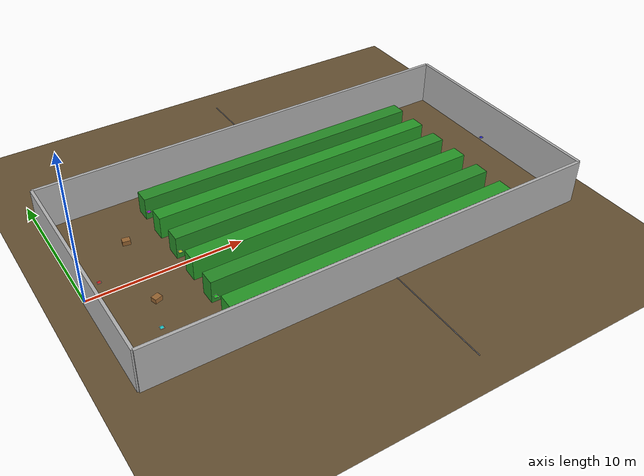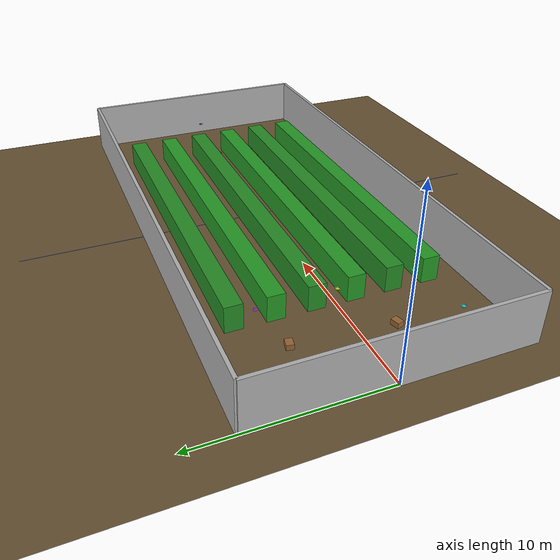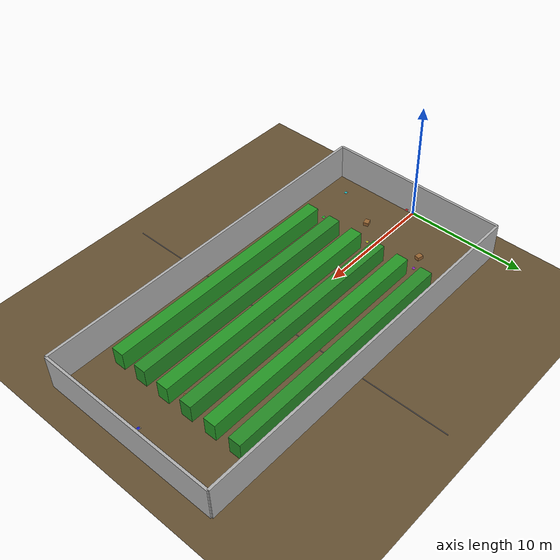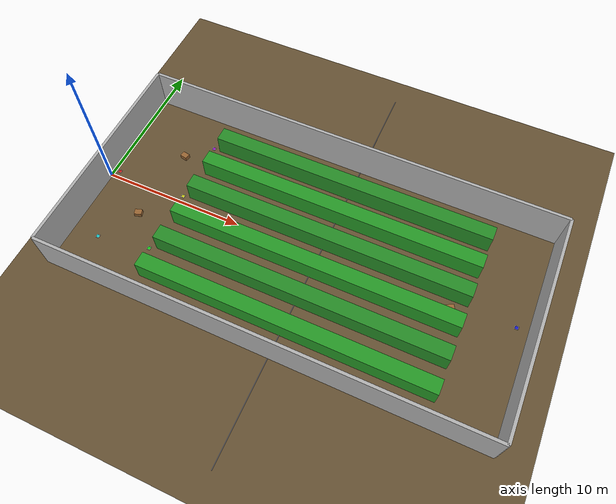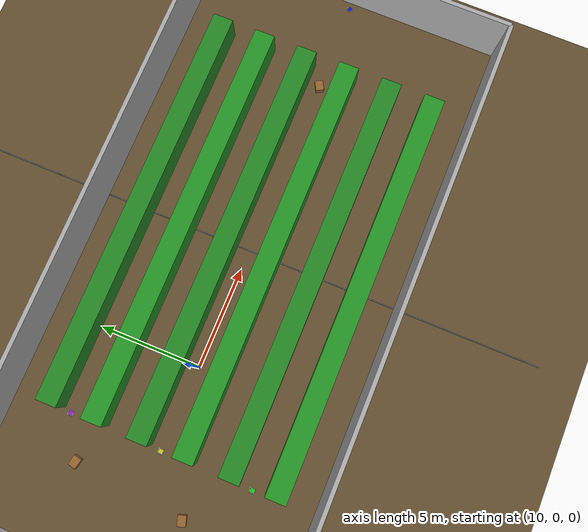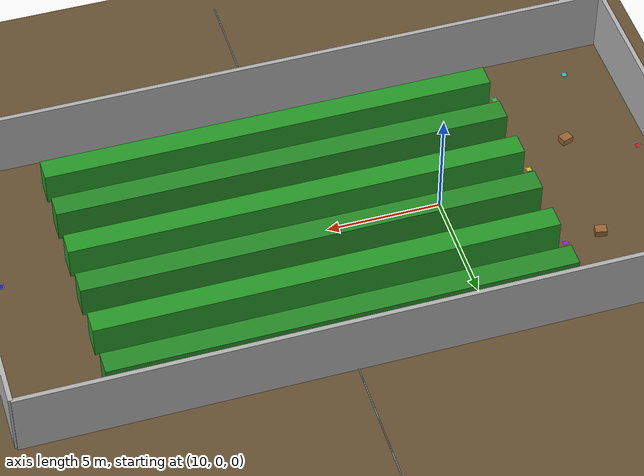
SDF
<?xml version="1.0"?>
<sdf version="1.6">
  <world name="greenhouse_simple">

    <!-- ═══════════════ Physics ═══════════════ -->
    <physics type="ode">
      <max_step_size>0.001</max_step_size>
      <real_time_factor>1.0</real_time_factor>
      <real_time_update_rate>1000</real_time_update_rate>
    </physics>

    <!-- ═══════════════ Lighting ═══════════════ -->
    <include>
      <uri>model://sun</uri>
    </include>

    <!-- ═══════════════ Ground Plane ═══════════════ -->
    <model name="ground_plane">
      <static>true</static>
      <link name="ground_link">
        <collision name="ground_collision">
          <geometry>
            <plane>
              <normal>0 0 1</normal>
              <size>40 20</size>
            </plane>
          </geometry>
        </collision>
        <visual name="ground_visual">
          <geometry>
            <plane>
              <normal>0 0 1</normal>
              <size>40 20</size>
            </plane>
          </geometry>
          <material>
            <ambient>0.35 0.28 0.18 1</ambient>
            <diffuse>0.4 0.32 0.2 1</diffuse>
          </material>
        </visual>
      </link>
    </model>

    <!-- ═══════════════ Greenhouse Walls (~30m x 15m) ═══════════════ -->
    <!-- North wall -->
    <model name="wall_north">
      <static>true</static>
      <pose>15 7.5 1.5 0 0 0</pose>
      <link name="wall_link">
        <collision name="col"><geometry><box><size>30 0.2 3.0</size></box></geometry></collision>
        <visual name="vis"><geometry><box><size>30 0.2 3.0</size></box></geometry>
          <material><ambient>0.6 0.6 0.6 1</ambient><diffuse>0.7 0.7 0.7 1</diffuse></material>
        </visual>
      </link>
    </model>

    <!-- South wall -->
    <model name="wall_south">
      <static>true</static>
      <pose>15 -7.5 1.5 0 0 0</pose>
      <link name="wall_link">
        <collision name="col"><geometry><box><size>30 0.2 3.0</size></box></geometry></collision>
        <visual name="vis"><geometry><box><size>30 0.2 3.0</size></box></geometry>
          <material><ambient>0.6 0.6 0.6 1</ambient><diffuse>0.7 0.7 0.7 1</diffuse></material>
        </visual>
      </link>
    </model>

    <!-- West wall (entrance side) -->
    <model name="wall_west">
      <static>true</static>
      <pose>0 0 1.5 0 0 0</pose>
      <link name="wall_link">
        <collision name="col"><geometry><box><size>0.2 15 3.0</size></box></geometry></collision>
        <visual name="vis"><geometry><box><size>0.2 15 3.0</size></box></geometry>
          <material><ambient>0.6 0.6 0.6 1</ambient><diffuse>0.7 0.7 0.7 1</diffuse></material>
        </visual>
      </link>
    </model>

    <!-- East wall -->
    <model name="wall_east">
      <static>true</static>
      <pose>30 0 1.5 0 0 0</pose>
      <link name="wall_link">
        <collision name="col"><geometry><box><size>0.2 15 3.0</size></box></geometry></collision>
        <visual name="vis"><geometry><box><size>0.2 15 3.0</size></box></geometry>
          <material><ambient>0.6 0.6 0.6 1</ambient><diffuse>0.7 0.7 0.7 1</diffuse></material>
        </visual>
      </link>
    </model>

    <!-- ═══════════════ Crop Rows (6 parallel rows) ═══════════════ -->
    <!-- Rows run East-West (X-axis), spaced along Y with 1.2m aisles -->
    <!-- Row width=1.0m, aisle=1.2m, so center-to-center = 2.2m -->
    <!-- Starting from Y = -5.5 going north -->

    <!-- Row 1 -->
    <model name="crop_row_1">
      <static>true</static>
      <pose>16 -5.5 0.75 0 0 0</pose>
      <link name="row_link">
        <collision name="col"><geometry><box><size>20 1.0 1.5</size></box></geometry></collision>
        <visual name="vis"><geometry><box><size>20 1.0 1.5</size></box></geometry>
          <material><ambient>0.1 0.5 0.1 1</ambient><diffuse>0.15 0.6 0.15 1</diffuse></material>
        </visual>
      </link>
    </model>

    <!-- Row 2 -->
    <model name="crop_row_2">
      <static>true</static>
      <pose>16 -3.3 0.75 0 0 0</pose>
      <link name="row_link">
        <collision name="col"><geometry><box><size>20 1.0 1.5</size></box></geometry></collision>
        <visual name="vis"><geometry><box><size>20 1.0 1.5</size></box></geometry>
          <material><ambient>0.1 0.45 0.1 1</ambient><diffuse>0.15 0.55 0.15 1</diffuse></material>
        </visual>
      </link>
    </model>

    <!-- Row 3 -->
    <model name="crop_row_3">
      <static>true</static>
      <pose>16 -1.1 0.75 0 0 0</pose>
      <link name="row_link">
        <collision name="col"><geometry><box><size>20 1.0 1.5</size></box></geometry></collision>
        <visual name="vis"><geometry><box><size>20 1.0 1.5</size></box></geometry>
          <material><ambient>0.1 0.5 0.1 1</ambient><diffuse>0.15 0.6 0.15 1</diffuse></material>
        </visual>
      </link>
    </model>

    <!-- Row 4 -->
    <model name="crop_row_4">
      <static>true</static>
      <pose>16 1.1 0.75 0 0 0</pose>
      <link name="row_link">
        <collision name="col"><geometry><box><size>20 1.0 1.5</size></box></geometry></collision>
        <visual name="vis"><geometry><box><size>20 1.0 1.5</size></box></geometry>
          <material><ambient>0.1 0.45 0.1 1</ambient><diffuse>0.15 0.55 0.15 1</diffuse></material>
        </visual>
      </link>
    </model>

    <!-- Row 5 -->
    <model name="crop_row_5">
      <static>true</static>
      <pose>16 3.3 0.75 0 0 0</pose>
      <link name="row_link">
        <collision name="col"><geometry><box><size>20 1.0 1.5</size></box></geometry></collision>
        <visual name="vis"><geometry><box><size>20 1.0 1.5</size></box></geometry>
          <material><ambient>0.1 0.5 0.1 1</ambient><diffuse>0.15 0.6 0.15 1</diffuse></material>
        </visual>
      </link>
    </model>

    <!-- Row 6 -->
    <model name="crop_row_6">
      <static>true</static>
      <pose>16 5.5 0.75 0 0 0</pose>
      <link name="row_link">
        <collision name="col"><geometry><box><size>20 1.0 1.5</size></box></geometry></collision>
        <visual name="vis"><geometry><box><size>20 1.0 1.5</size></box></geometry>
          <material><ambient>0.1 0.45 0.1 1</ambient><diffuse>0.15 0.55 0.15 1</diffuse></material>
        </visual>
      </link>
    </model>

    <!-- ═══════════════ Main Corridor (perpendicular, ~2m wide) ═══════════════ -->
    <!-- The corridor splits crop rows: rows run from X=7 to X=27, corridor at X=6 to X=7 is clear -->
    <!-- Actually, we achieve the corridor by making rows shorter and leaving a gap -->
    <!-- Rows are centered at X=16 with length 20, so they span X=6 to X=26 -->
    <!-- The starting area is at X=1 to X=6 (clear space near west wall) -->

    <!-- ═══════════════ Static Obstacles (crates) ═══════════════ -->
    <model name="crate_1">
      <static>true</static>
      <pose>3.5 -2.0 0.15 0 0 0.3</pose>
      <link name="crate_link">
        <collision name="col"><geometry><box><size>0.5 0.4 0.3</size></box></geometry></collision>
        <visual name="vis"><geometry><box><size>0.5 0.4 0.3</size></box></geometry>
          <material><ambient>0.5 0.35 0.15 1</ambient><diffuse>0.6 0.4 0.2 1</diffuse></material>
        </visual>
      </link>
    </model>

    <model name="crate_2">
      <static>true</static>
      <pose>4.0 3.5 0.15 0 0 -0.2</pose>
      <link name="crate_link">
        <collision name="col"><geometry><box><size>0.5 0.4 0.3</size></box></geometry></collision>
        <visual name="vis"><geometry><box><size>0.5 0.4 0.3</size></box></geometry>
          <material><ambient>0.5 0.35 0.15 1</ambient><diffuse>0.6 0.4 0.2 1</diffuse></material>
        </visual>
      </link>
    </model>

    <model name="crate_3">
      <static>true</static>
      <pose>25.0 0.0 0.15 0 0 0.5</pose>
      <link name="crate_link">
        <collision name="col"><geometry><box><size>0.5 0.4 0.3</size></box></geometry></collision>
        <visual name="vis"><geometry><box><size>0.5 0.4 0.3</size></box></geometry>
          <material><ambient>0.5 0.35 0.15 1</ambient><diffuse>0.6 0.4 0.2 1</diffuse></material>
        </visual>
      </link>
    </model>

    <!-- ═══════════════ Heating Pipe Rails ═══════════════ -->
    <!-- 2 parallel steel pipes per aisle × 5 aisles = 10 rails -->
    <!-- 51mm diameter, 20m long, 450mm apart center-to-center -->
    <!-- Aisle centers at Y = -4.4, -2.2, 0.0, 2.2, 4.4 -->

    <!-- Aisle 1-2 (Y = -4.4) — left rail -->
    <model name="heating_rail_1_2_left">
      <static>true</static>
      <pose>16.0 -4.625 0.0255 1.5708 0 0</pose>
      <link name="rail_link">
        <collision name="col"><geometry><cylinder><radius>0.0255</radius><length>20.0</length></cylinder></geometry></collision>
        <visual name="vis"><geometry><cylinder><radius>0.0255</radius><length>20.0</length></cylinder></geometry>
          <material><ambient>0.6 0.6 0.65 1</ambient><diffuse>0.7 0.7 0.75 1</diffuse><specular>0.3 0.3 0.3 1</specular></material>
        </visual>
      </link>
    </model>

    <!-- Aisle 1-2 (Y = -4.4) — right rail -->
    <model name="heating_rail_1_2_right">
      <static>true</static>
      <pose>16.0 -4.175 0.0255 1.5708 0 0</pose>
      <link name="rail_link">
        <collision name="col"><geometry><cylinder><radius>0.0255</radius><length>20.0</length></cylinder></geometry></collision>
        <visual name="vis"><geometry><cylinder><radius>0.0255</radius><length>20.0</length></cylinder></geometry>
          <material><ambient>0.6 0.6 0.65 1</ambient><diffuse>0.7 0.7 0.75 1</diffuse><specular>0.3 0.3 0.3 1</specular></material>
        </visual>
      </link>
    </model>

    <!-- Aisle 2-3 (Y = -2.2) — left rail -->
    <model name="heating_rail_2_3_left">
      <static>true</static>
      <pose>16.0 -2.425 0.0255 1.5708 0 0</pose>
      <link name="rail_link">
        <collision name="col"><geometry><cylinder><radius>0.0255</radius><length>20.0</length></cylinder></geometry></collision>
        <visual name="vis"><geometry><cylinder><radius>0.0255</radius><length>20.0</length></cylinder></geometry>
          <material><ambient>0.6 0.6 0.65 1</ambient><diffuse>0.7 0.7 0.75 1</diffuse><specular>0.3 0.3 0.3 1</specular></material>
        </visual>
      </link>
    </model>

    <!-- Aisle 2-3 (Y = -2.2) — right rail -->
    <model name="heating_rail_2_3_right">
      <static>true</static>
      <pose>16.0 -1.975 0.0255 1.5708 0 0</pose>
      <link name="rail_link">
        <collision name="col"><geometry><cylinder><radius>0.0255</radius><length>20.0</length></cylinder></geometry></collision>
        <visual name="vis"><geometry><cylinder><radius>0.0255</radius><length>20.0</length></cylinder></geometry>
          <material><ambient>0.6 0.6 0.65 1</ambient><diffuse>0.7 0.7 0.75 1</diffuse><specular>0.3 0.3 0.3 1</specular></material>
        </visual>
      </link>
    </model>

    <!-- Aisle 3-4 (Y = 0.0) — left rail -->
    <model name="heating_rail_3_4_left">
      <static>true</static>
      <pose>16.0 -0.225 0.0255 1.5708 0 0</pose>
      <link name="rail_link">
        <collision name="col"><geometry><cylinder><radius>0.0255</radius><length>20.0</length></cylinder></geometry></collision>
        <visual name="vis"><geometry><cylinder><radius>0.0255</radius><length>20.0</length></cylinder></geometry>
          <material><ambient>0.6 0.6 0.65 1</ambient><diffuse>0.7 0.7 0.75 1</diffuse><specular>0.3 0.3 0.3 1</specular></material>
        </visual>
      </link>
    </model>

    <!-- Aisle 3-4 (Y = 0.0) — right rail -->
    <model name="heating_rail_3_4_right">
      <static>true</static>
      <pose>16.0 0.225 0.0255 1.5708 0 0</pose>
      <link name="rail_link">
        <collision name="col"><geometry><cylinder><radius>0.0255</radius><length>20.0</length></cylinder></geometry></collision>
        <visual name="vis"><geometry><cylinder><radius>0.0255</radius><length>20.0</length></cylinder></geometry>
          <material><ambient>0.6 0.6 0.65 1</ambient><diffuse>0.7 0.7 0.75 1</diffuse><specular>0.3 0.3 0.3 1</specular></material>
        </visual>
      </link>
    </model>

    <!-- Aisle 4-5 (Y = 2.2) — left rail -->
    <model name="heating_rail_4_5_left">
      <static>true</static>
      <pose>16.0 1.975 0.0255 1.5708 0 0</pose>
      <link name="rail_link">
        <collision name="col"><geometry><cylinder><radius>0.0255</radius><length>20.0</length></cylinder></geometry></collision>
        <visual name="vis"><geometry><cylinder><radius>0.0255</radius><length>20.0</length></cylinder></geometry>
          <material><ambient>0.6 0.6 0.65 1</ambient><diffuse>0.7 0.7 0.75 1</diffuse><specular>0.3 0.3 0.3 1</specular></material>
        </visual>
      </link>
    </model>

    <!-- Aisle 4-5 (Y = 2.2) — right rail -->
    <model name="heating_rail_4_5_right">
      <static>true</static>
      <pose>16.0 2.425 0.0255 1.5708 0 0</pose>
      <link name="rail_link">
        <collision name="col"><geometry><cylinder><radius>0.0255</radius><length>20.0</length></cylinder></geometry></collision>
        <visual name="vis"><geometry><cylinder><radius>0.0255</radius><length>20.0</length></cylinder></geometry>
          <material><ambient>0.6 0.6 0.65 1</ambient><diffuse>0.7 0.7 0.75 1</diffuse><specular>0.3 0.3 0.3 1</specular></material>
        </visual>
      </link>
    </model>

    <!-- Aisle 5-6 (Y = 4.4) — left rail -->
    <model name="heating_rail_5_6_left">
      <static>true</static>
      <pose>16.0 4.175 0.0255 1.5708 0 0</pose>
      <link name="rail_link">
        <collision name="col"><geometry><cylinder><radius>0.0255</radius><length>20.0</length></cylinder></geometry></collision>
        <visual name="vis"><geometry><cylinder><radius>0.0255</radius><length>20.0</length></cylinder></geometry>
          <material><ambient>0.6 0.6 0.65 1</ambient><diffuse>0.7 0.7 0.75 1</diffuse><specular>0.3 0.3 0.3 1</specular></material>
        </visual>
      </link>
    </model>

    <!-- Aisle 5-6 (Y = 4.4) — right rail -->
    <model name="heating_rail_5_6_right">
      <static>true</static>
      <pose>16.0 4.625 0.0255 1.5708 0 0</pose>
      <link name="rail_link">
        <collision name="col"><geometry><cylinder><radius>0.0255</radius><length>20.0</length></cylinder></geometry></collision>
        <visual name="vis"><geometry><cylinder><radius>0.0255</radius><length>20.0</length></cylinder></geometry>
          <material><ambient>0.6 0.6 0.65 1</ambient><diffuse>0.7 0.7 0.75 1</diffuse><specular>0.3 0.3 0.3 1</specular></material>
        </visual>
      </link>
    </model>

    <!-- ═══════════════ AprilTag Markers ═══════════════ -->
    <!-- Tag 0: West corridor end (near entrance) -->
    <model name="apriltag_0">
      <static>true</static>
      <pose>1.0 0.0 1.0 0 0 1.5708</pose>
      <link name="tag_link">
        <visual name="border"><geometry><box><size>0.25 0.25 0.0005</size></box></geometry>
          <material><ambient>1 1 1 1</ambient><diffuse>1 1 1 1</diffuse></material>
        </visual>
        <visual name="tag"><geometry><box><size>0.2 0.2 0.001</size></box></geometry>
          <pose>0 0 0.001 0 0 0</pose>
          <material><ambient>0.8 0.1 0.1 1</ambient><diffuse>0.8 0.1 0.1 1</diffuse></material>
        </visual>
      </link>
    </model>

    <!-- Tag 1: East corridor end -->
    <model name="apriltag_1">
      <static>true</static>
      <pose>29.0 0.0 1.0 0 0 -1.5708</pose>
      <link name="tag_link">
        <visual name="border"><geometry><box><size>0.25 0.25 0.0005</size></box></geometry>
          <material><ambient>1 1 1 1</ambient><diffuse>1 1 1 1</diffuse></material>
        </visual>
        <visual name="tag"><geometry><box><size>0.2 0.2 0.001</size></box></geometry>
          <pose>0 0 0.001 0 0 0</pose>
          <material><ambient>0.1 0.1 0.8 1</ambient><diffuse>0.1 0.1 0.8 1</diffuse></material>
        </visual>
      </link>
    </model>

    <!-- Tag 2: Aisle 1-2 entrance (west side) -->
    <model name="apriltag_2">
      <static>true</static>
      <pose>6.0 -4.4 1.0 0 0 1.5708</pose>
      <link name="tag_link">
        <visual name="border"><geometry><box><size>0.25 0.25 0.0005</size></box></geometry>
          <material><ambient>1 1 1 1</ambient><diffuse>1 1 1 1</diffuse></material>
        </visual>
        <visual name="tag"><geometry><box><size>0.2 0.2 0.001</size></box></geometry>
          <pose>0 0 0.001 0 0 0</pose>
          <material><ambient>0.1 0.8 0.1 1</ambient><diffuse>0.1 0.8 0.1 1</diffuse></material>
        </visual>
      </link>
    </model>

    <!-- Tag 3: Aisle 3-4 entrance (west side) -->
    <model name="apriltag_3">
      <static>true</static>
      <pose>6.0 0.0 1.0 0 0 1.5708</pose>
      <link name="tag_link">
        <visual name="border"><geometry><box><size>0.25 0.25 0.0005</size></box></geometry>
          <material><ambient>1 1 1 1</ambient><diffuse>1 1 1 1</diffuse></material>
        </visual>
        <visual name="tag"><geometry><box><size>0.2 0.2 0.001</size></box></geometry>
          <pose>0 0 0.001 0 0 0</pose>
          <material><ambient>0.8 0.8 0.1 1</ambient><diffuse>0.8 0.8 0.1 1</diffuse></material>
        </visual>
      </link>
    </model>

    <!-- Tag 4: Aisle 5-6 entrance (west side) -->
    <model name="apriltag_4">
      <static>true</static>
      <pose>6.0 4.4 1.0 0 0 1.5708</pose>
      <link name="tag_link">
        <visual name="border"><geometry><box><size>0.25 0.25 0.0005</size></box></geometry>
          <material><ambient>1 1 1 1</ambient><diffuse>1 1 1 1</diffuse></material>
        </visual>
        <visual name="tag"><geometry><box><size>0.2 0.2 0.001</size></box></geometry>
          <pose>0 0 0.001 0 0 0</pose>
          <material><ambient>0.6 0.1 0.8 1</ambient><diffuse>0.6 0.1 0.8 1</diffuse></material>
        </visual>
      </link>
    </model>

    <!-- Tag 5: Starting area -->
    <model name="apriltag_5">
      <static>true</static>
      <pose>2.5 -5.0 1.0 0 0 0</pose>
      <link name="tag_link">
        <visual name="border"><geometry><box><size>0.25 0.25 0.0005</size></box></geometry>
          <material><ambient>1 1 1 1</ambient><diffuse>1 1 1 1</diffuse></material>
        </visual>
        <visual name="tag"><geometry><box><size>0.2 0.2 0.001</size></box></geometry>
          <pose>0 0 0.001 0 0 0</pose>
          <material><ambient>0.1 0.8 0.8 1</ambient><diffuse>0.1 0.8 0.8 1</diffuse></material>
        </visual>
      </link>
    </model>

  </world>
</sdf>
